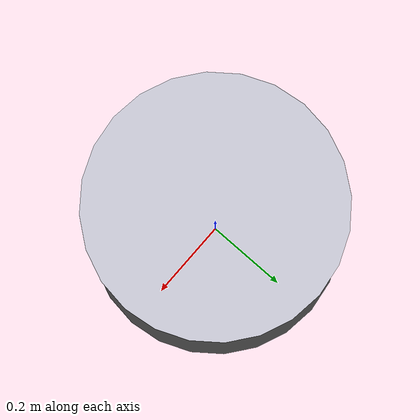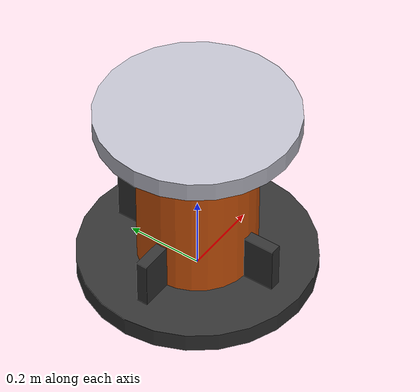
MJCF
<mujoco model="industrial_robot_pedestal">
  <compiler angle="degree" coordinate="local"/>

  <asset>
    <material name="cast_iron_mat" rgba="0.2 0.2 0.2 1" reflectance="0.1"/>
    <material name="robot_orange_mat" rgba="0.85 0.35 0.05 1" reflectance="0.2"/>
    <material name="machined_steel_mat" rgba="0.75 0.75 0.8 1" reflectance="0.5"/>
  </asset>

  <worldbody>
    <body name="robot_pedestal" pos="0 0 0">

      <geom name="base_plate" type="cylinder" pos="0 0 0.025" size="0.3 0.025" material="cast_iron_mat" mass="20"/>

      <geom name="column" type="cylinder" pos="0 0 0.25" size="0.15 0.2" material="robot_orange_mat" mass="30"/>

      <geom name="top_plate" type="cylinder" pos="0 0 0.475" size="0.25 0.025" material="machined_steel_mat" mass="15"/>

      <geom name="rib_front" type="box" pos="0.18 0 0.1" size="0.05 0.015 0.075" material="cast_iron_mat"/>
      <geom name="rib_back"  type="box" pos="-0.18 0 0.1" size="0.05 0.015 0.075" material="cast_iron_mat"/>
      <geom name="rib_left"  type="box" pos="0 0.18 0.1" size="0.015 0.05 0.075" material="cast_iron_mat"/>
      <geom name="rib_right" type="box" pos="0 -0.18 0.1" size="0.015 0.05 0.075" material="cast_iron_mat"/>

    </body>
  </worldbody>
</mujoco>
